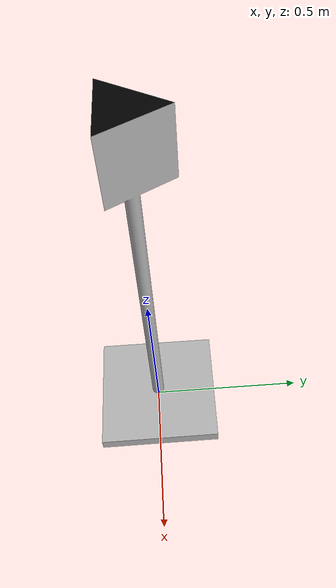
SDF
<?xml version="1.0" ?>
<sdf version="1.7">
  <model name="ar_tag">
    <static>true</static>
    <link name="link">
      <inertial>
        <mass>12.0</mass>
        <inertia>
          <ixx>5200.0</ixx>
          <ixy>0.0</ixy>
          <ixz>0.0</ixz>
          <iyy>5200.0</iyy>
          <iyz>0.0</iyz>
          <izz>230.0</izz>
        </inertia>
      </inertial>
      <collision name="collision">
        <geometry>
          <mesh>
            <scale>1 1 1</scale>
            <uri>model://ar_tag/meshes/ar_tag.stl</uri>
          </mesh>
        </geometry>
      </collision>
      <visual name="visual">
        <geometry>
          <mesh>
            <scale>1 1 1</scale>
            <uri>model://ar_tag/textures/ar_tag.dae</uri>
          </mesh>
        </geometry>
      </visual>
    </link>
  </model>
</sdf>
